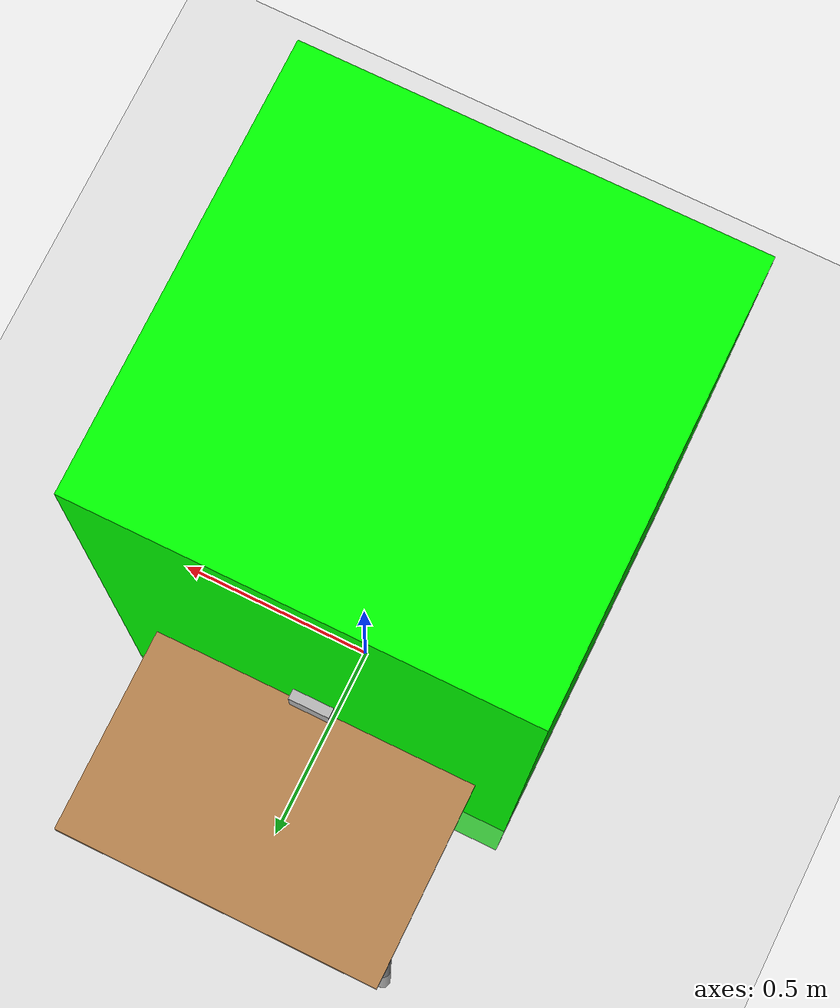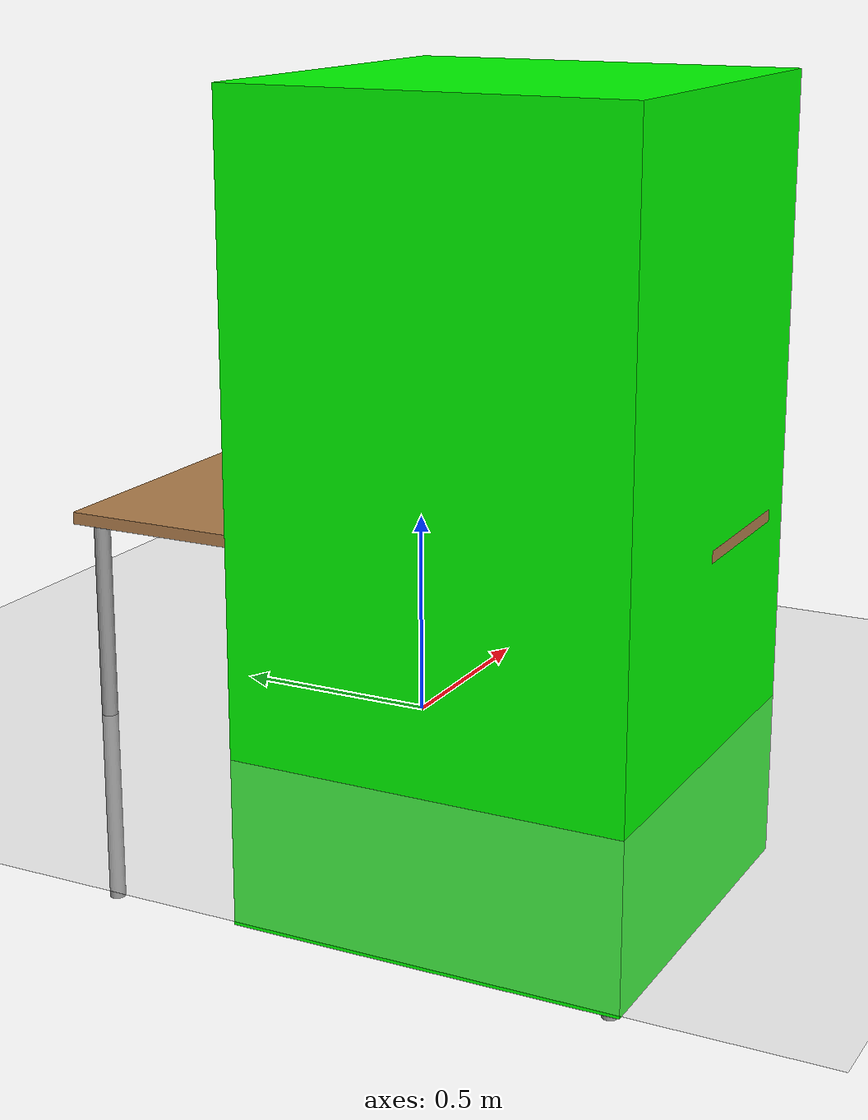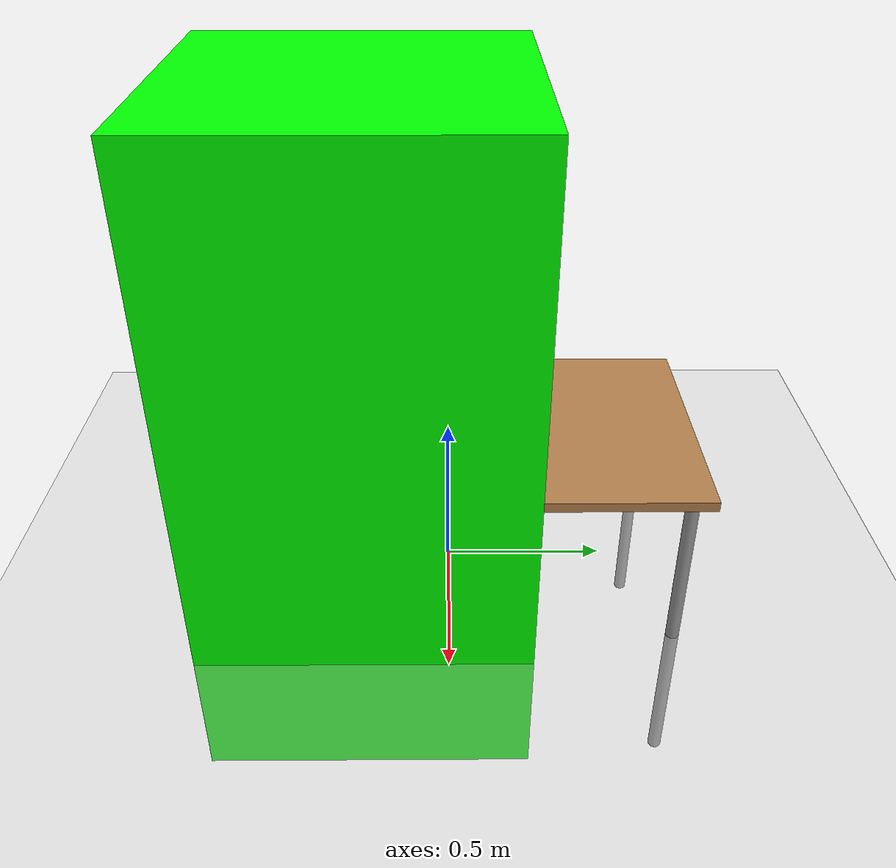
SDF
<?xml version="1.0" ?>
<sdf version="1.4">
  <!-- We use a custom world for the rrbot so that the camera angle is launched correctly -->

  <world name="default">
    <include>
      <uri>model://ground_plane</uri>
    </include>

    <!-- Global light source -->
    <include>
      <uri>model://sun</uri>
    </include>

    <include>
        <uri>model://table</uri>
        <pose>0 0 -0.5 0 0 1.57</pose>
    </include>

    <include>
        <uri>model://test_box</uri>
        <pose>0 0 0.57 0 0 0</pose>
    </include>

    <include>
        <uri>model://blue_box</uri>
        <pose>0 0.25 0.57 0 0 0</pose>
    </include>

    <include>
        <uri>model://green_box</uri>
        <pose>0 -0.25 0.57 0 0 0</pose>
    </include>

  </world>
</sdf>

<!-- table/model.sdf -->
<sdf version="1.5">
  <model name="table">
    <static>true</static>
    <link name="link">
      <collision name="surface">
        <pose>0 0 1.0 0 0 0</pose>
        <geometry>
          <box>
            <size>1.5 0.8 0.03</size>
          </box>
        </geometry>
        <surface>
          <friction>
            <ode>
              <mu>0.6</mu>
              <mu2>0.6</mu2>
            </ode>
          </friction>
        </surface>
      </collision>
      <visual name="visual1">
        <pose>0 0 1.0 0 0 0</pose>
        <geometry>
          <box>
            <size>1.5 0.8 0.03</size>
          </box>
        </geometry>
        <material>
          <script>
            <uri>model://media/materials/scripts/gazebo.material</uri>
            <name>Gazebo/Wood</name>
          </script>
        </material>
      </visual>
      <collision name="front_left_leg">
        <pose>0.68 0.38 0.5 0 0 0</pose>
        <geometry>
          <cylinder>
            <radius>0.02</radius>
            <length>1.0</length>
          </cylinder>
        </geometry>
      </collision>
      <visual name="front_left_leg">
        <pose>0.68 0.38 0.5 0 0 0</pose>
        <geometry>
          <cylinder>
            <radius>0.02</radius>
            <length>1.0</length>
          </cylinder>
        </geometry>
        <material>
          <script>
            <uri>model://media/materials/scripts/gazebo.material</uri>
            <name>Gazebo/Grey</name>
          </script>
        </material>
      </visual>
      <collision name="front_right_leg">
        <pose>0.68 -0.38 0.5 0 0 0</pose>
        <geometry>
          <cylinder>
            <radius>0.02</radius>
            <length>1.0</length>
          </cylinder>
        </geometry>
      </collision>
      <visual name="front_right_leg">
        <pose>0.68 -0.38 0.5 0 0 0</pose>
        <geometry>
          <cylinder>
            <radius>0.02</radius>
            <length>1.0</length>
          </cylinder>
        </geometry>
        <material>
          <script>
            <uri>model://media/materials/scripts/gazebo.material</uri>
            <name>Gazebo/Grey</name>
          </script>
        </material>
      </visual>
      <collision name="back_right_leg">
        <pose>-0.68 -0.38 0.5 0 0 0</pose>
        <geometry>
          <cylinder>
            <radius>0.02</radius>
            <length>1.0</length>
          </cylinder>
        </geometry>
      </collision>
      <visual name="back_right_leg">
        <pose>-0.68 -0.38 0.5 0 0 0</pose>
        <geometry>
          <cylinder>
            <radius>0.02</radius>
            <length>1.0</length>
          </cylinder>
        </geometry>
        <material>
          <script>
            <uri>model://media/materials/scripts/gazebo.material</uri>
            <name>Gazebo/Grey</name>
          </script>
        </material>
      </visual>
      <collision name="back_left_leg">
        <pose>-0.68 0.38 0.5 0 0 0</pose>
        <geometry>
          <cylinder>
            <radius>0.02</radius>
            <length>1.0</length>
          </cylinder>
        </geometry>
      </collision>
      <visual name="back_left_leg">
        <pose>-0.68 0.38 0.5 0 0 0</pose>
        <geometry>
          <cylinder>
            <radius>0.02</radius>
            <length>1.0</length>
          </cylinder>
        </geometry>
        <material>
          <script>
            <uri>model://media/materials/scripts/gazebo.material</uri>
            <name>Gazebo/Grey</name>
          </script>
        </material>
      </visual>
    </link>
  </model>
</sdf>

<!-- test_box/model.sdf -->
<sdf version="1.6">
  <model name="test_box">
    <static>false</static>
    <link name="link">
      <inertial>
        <mass>0.1</mass>
        <inertia>
          <ixx>0.00083</ixx>
          <iyy>0.00083</iyy>
          <izz>0.00083</izz>
        </inertia>
      </inertial>
      <collision name="collision">
        <geometry>
          <box>
            <size>0.04 0.04 0.07</size>
          </box>
        </geometry>
      </collision>
      <visual name="visual">
        <geometry>
          <box>
            <size>0.04 0.04 0.07</size>
          </box>
        </geometry>
        <material>
          <ambient>1 0.5 0 1</ambient>
          <diffuse>1 0.5 0 1</diffuse>
        </material>
      </visual>
    </link>
  </model>
</sdf>

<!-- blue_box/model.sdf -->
<sdf version='1.6'>
  <model name='blue_box'>
    <link name='link'>
      <inertial>
        <mass>0.01</mass>
        <inertia>
          <ixx>0.166667</ixx>
          <ixy>0</ixy>
          <ixz>0</ixz>
          <iyy>0.166667</iyy>
          <iyz>0</iyz>
          <izz>0.166667</izz>
        </inertia>
        <pose frame=''>0 0 0 0 -0 0</pose>
      </inertial>
      <self_collide>0</self_collide>
      <enable_wind>0</enable_wind>
      <kinematic>0</kinematic>
      <pose frame=''>0 -0 0.035 0 -0 0</pose>
      <gravity>1</gravity>
      <visual name='visual'>
        <geometry>
          <box>
            <size>0.1 0.05 0.07</size>
          </box>
        </geometry>
        <material>
          <shader type='pixel'>
            <normal_map>__default__</normal_map>
          </shader>
          <ambient>0 0 1 1</ambient>
          <diffuse>0.7 0.7 0.7 1</diffuse>
          <specular>0.01 0.01 0.01 1</specular>
          <emissive>0 0 0 1</emissive>
        </material>
        <pose frame=''>0 0 0 0 -0 0</pose>
        <transparency>0</transparency>
        <cast_shadows>1</cast_shadows>
      </visual>
      <collision name='collision'>
        <laser_retro>0</laser_retro>
        <max_contacts>10</max_contacts>
        <pose frame=''>0 0 0 0 -0 0</pose>
        <geometry>
          <box>
            <size>0.1 0.05 0.07</size>
          </box>
        </geometry>
        <surface>
          <friction>
            <ode>
              <mu>1</mu>
              <mu2>1</mu2>
              <fdir1>0 0 0</fdir1>
              <slip1>0</slip1>
              <slip2>0</slip2>
            </ode>
            <torsional>
              <coefficient>1</coefficient>
              <patch_radius>0</patch_radius>
              <surface_radius>0</surface_radius>
              <use_patch_radius>1</use_patch_radius>
              <ode>
                <slip>0</slip>
              </ode>
            </torsional>
          </friction>
          <bounce>
            <restitution_coefficient>0</restitution_coefficient>
            <threshold>1e+06</threshold>
          </bounce>
          <contact>
            <collide_without_contact>0</collide_without_contact>
            <collide_without_contact_bitmask>1</collide_without_contact_bitmask>
            <collide_bitmask>1</collide_bitmask>
            <ode>
              <soft_cfm>0</soft_cfm>
              <soft_erp>0.2</soft_erp>
              <kp>1e+13</kp>
              <kd>1</kd>
              <max_vel>0.01</max_vel>
              <min_depth>0</min_depth>
            </ode>
            <bullet>
              <split_impulse>1</split_impulse>
              <split_impulse_penetration_threshold>-0.01</split_impulse_penetration_threshold>
              <soft_cfm>0</soft_cfm>
              <soft_erp>0.2</soft_erp>
              <kp>1e+13</kp>
              <kd>1</kd>
            </bullet>
          </contact>
        </surface>
      </collision>
    </link>
    <static>0</static>
    <allow_auto_disable>1</allow_auto_disable>
  </model>
</sdf>

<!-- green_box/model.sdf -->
<sdf version="1.6">
  <model name="green_box">
    <pose frame=''>0 0 1 0 -0 0</pose>
    <link name="link">
      <collision name="collision">
        <geometry>
          <box>
            <size>1 1 2</size>
          </box>
        </geometry>
      </collision>
      <visual name="visual">
        <geometry>
          <box>
            <size>1 1 2</size>
          </box>
        </geometry>
        <material>
          <ambient>0 1 0</ambient>
          <diffuse>0 1 0</diffuse>
          <specular>0.1 0.1 0.1 1</specular>
          <emissive>0 0 0 1</emissive>
        </material>
      </visual>
    </link>
  </model>
</sdf>
